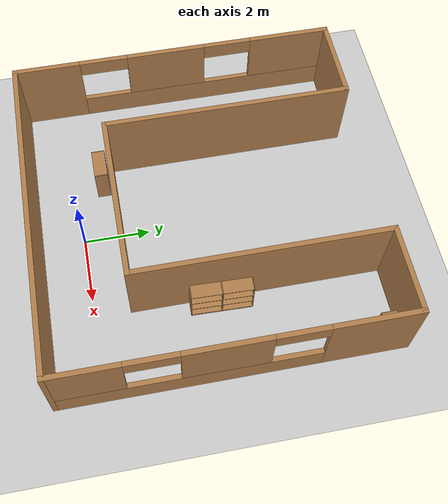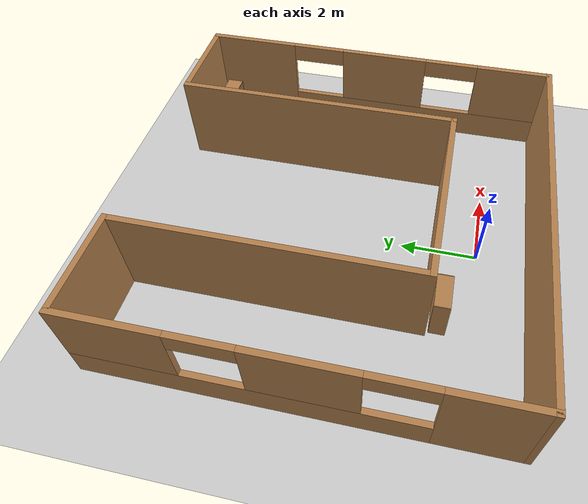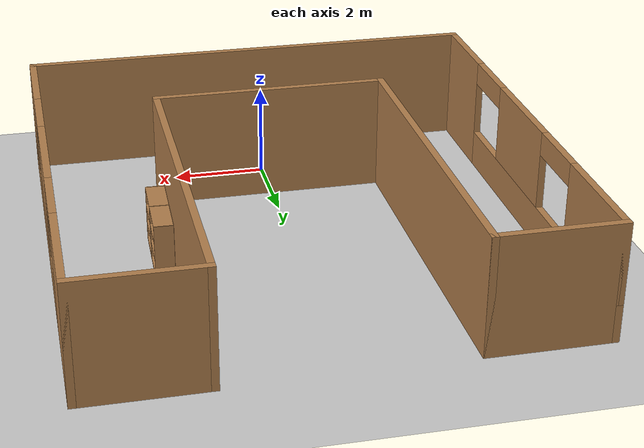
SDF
<sdf version="1.6">
 <world name="default">
  <light name="sun" type="directional">
   <pose>0 0 10 0 -0 0</pose>
   <diffuse>0.8 0.8 0.8 1</diffuse>
   <specular>0.2 0.2 0.2 1</specular>
   <attenuation>
    <range>1000</range>
    <constant>0.9</constant>
    <linear>0.01</linear>
    <quadratic>0.001</quadratic>
   </attenuation>
   <direction>-0.5 0.1 -0.9</direction>
  </light>
  <model name="ground_plane">
   <static>1</static>
   <link name="link">
    <collision name="collision">
     <geometry><plane><normal>0 0 1</normal><size>100 100</size></plane></geometry>
     <surface><friction><ode><mu>100</mu><mu2>50</mu2></ode></friction></surface>
    </collision>
    <visual name="visual">
     <cast_shadows>0</cast_shadows>
     <geometry><plane><normal>0 0 1</normal><size>100 100</size></plane></geometry>
     <material>
      <script><uri>file://media/materials/scripts/gazebo.material</uri><name>Gazebo/Grey</name></script>
     </material>
    </visual>
   </link>
  </model>
  <gravity>0 0 -9.8</gravity>
  <magnetic_field>6e-06 2.3e-05 -4.2e-05</magnetic_field>
  <atmosphere type="adiabatic"/>
  <physics name="default_physics" default="0" type="ode">
   <max_step_size>0.001</max_step_size>
   <real_time_factor>1</real_time_factor>
   <real_time_update_rate>1000</real_time_update_rate>
  </physics>
  <scene><ambient>0.4 0.4 0.4 1</ambient><background>0.7 0.7 0.7 1</background><shadows>1</shadows></scene>
  <spherical_coordinates>
   <surface_model>EARTH_WGS84</surface_model>
   <latitude_deg>0</latitude_deg>
   <longitude_deg>0</longitude_deg>
   <elevation>0</elevation>
   <heading_deg>0</heading_deg>
  </spherical_coordinates>
  <model name="uBuilding">
   <pose>0.001322 3.63993 0 0 -0 0</pose>
   <link name="Wall_0">
    <collision name="Wall_0_Collision">
     <geometry><box><size>2.65 0.15 2.5</size></box></geometry>
     <pose>0 0 1.25 0 -0 0</pose>
    </collision>
    <visual name="Wall_0_Visual">
     <pose>0 0 1.25 0 -0 0</pose>
     <geometry><box><size>2.65 0.15 2.5</size></box></geometry>
     <material>
      <script><uri>file://media/materials/scripts/gazebo.material</uri><name>Gazebo/Wood</name></script>
      <ambient>1 1 1 1</ambient>
     </material>
     <meta><layer>0</layer></meta>
    </visual>
    <pose>-3.75 5 0 0 -0 0</pose>
   </link>
   <link name="Wall_1">
    <collision name="Wall_1_Collision">
     <geometry><box><size>7.65 0.15 2.5</size></box></geometry>
     <pose>0 0 1.25 0 -0 0</pose>
    </collision>
    <visual name="Wall_1_Visual">
     <pose>0 0 1.25 0 -0 0</pose>
     <geometry><box><size>7.65 0.15 2.5</size></box></geometry>
     <material>
      <script><uri>file://media/materials/scripts/gazebo.material</uri><name>Gazebo/Wood</name></script>
      <ambient>1 1 1 1</ambient>
     </material>
     <meta><layer>0</layer></meta>
    </visual>
    <pose>-2.5 1.25 0 0 0 -1.5708</pose>
   </link>
   <link name="Wall_2">
    <collision name="Wall_2_Collision">
     <geometry><box><size>5.15 0.15 2.5</size></box></geometry>
     <pose>0 0 1.25 0 -0 0</pose>
    </collision>
    <visual name="Wall_2_Visual">
     <pose>0 0 1.25 0 -0 0</pose>
     <geometry><box><size>5.15 0.15 2.5</size></box></geometry>
     <material>
      <script><uri>file://media/materials/scripts/gazebo.material</uri><name>Gazebo/Wood</name></script>
      <ambient>1 1 1 1</ambient>
     </material>
     <meta><layer>0</layer></meta>
    </visual>
    <pose>0 -2.5 0 0 -0 0</pose>
   </link>
   <link name="Wall_3">
    <collision name="Wall_3_Collision">
     <geometry><box><size>7.65 0.15 2.5</size></box></geometry>
     <pose>0 0 1.25 0 -0 0</pose>
    </collision>
    <visual name="Wall_3_Visual">
     <pose>0 0 1.25 0 -0 0</pose>
     <geometry><box><size>7.65 0.15 2.5</size></box></geometry>
     <material>
      <script><uri>file://media/materials/scripts/gazebo.material</uri><name>Gazebo/Wood</name></script>
      <ambient>1 1 1 1</ambient>
     </material>
     <meta><layer>0</layer></meta>
    </visual>
    <pose>2.5 1.25 0 0 -0 1.5708</pose>
   </link>
   <link name="Wall_4">
    <collision name="Wall_4_Collision">
     <geometry><box><size>2.65 0.15 2.5</size></box></geometry>
     <pose>0 0 1.25 0 -0 0</pose>
    </collision>
    <visual name="Wall_4_Visual">
     <pose>0 0 1.25 0 -0 0</pose>
     <geometry><box><size>2.65 0.15 2.5</size></box></geometry>
     <material>
      <script><uri>file://media/materials/scripts/gazebo.material</uri><name>Gazebo/Wood</name></script>
      <ambient>1 1 1 1</ambient>
     </material>
     <meta><layer>0</layer></meta>
    </visual>
    <pose>3.75 5 0 0 -0 0</pose>
   </link>
   <link name="Wall_5">
    <pose>5 0 0 0 0 -1.5708</pose>
    <visual name="Wall_5_Visual_0">
     <pose>-3.79245 0 1.25 0 -0 0</pose>
     <geometry><box><size>2.5651 0.15 2.5</size></box></geometry>
     <material>
      <script><uri>file://media/materials/scripts/gazebo.material</uri><name>Gazebo/Wood</name></script>
      <ambient>1 1 1 1</ambient>
     </material>
     <meta><layer>0</layer></meta>
    </visual>
    <collision name="Wall_5_Collision_0">
     <geometry><box><size>2.5651 0.15 2.5</size></box></geometry>
     <pose>-3.79245 0 1.25 0 -0 0</pose>
    </collision>
    <visual name="Wall_5_Visual_1">
     <pose>1.28255 0 0.4 0 -0 0</pose>
     <geometry><box><size>7.5849 0.15 0.8</size></box></geometry>
     <material>
      <script><uri>file://media/materials/scripts/gazebo.material</uri><name>Gazebo/Wood</name></script>
      <ambient>1 1 1 1</ambient>
     </material>
     <meta><layer>0</layer></meta>
    </visual>
    <collision name="Wall_5_Collision_1">
     <geometry><box><size>7.5849 0.15 0.8</size></box></geometry>
     <pose>1.28255 0 0.4 0 -0 0</pose>
    </collision>
    <visual name="Wall_5_Visual_2">
     <pose>0.228463 0 1.65 0 -0 0</pose>
     <geometry><box><size>2.47673 0.15 1.7</size></box></geometry>
     <material>
      <script><uri>file://media/materials/scripts/gazebo.material</uri><name>Gazebo/Wood</name></script>
      <ambient>1 1 1 1</ambient>
     </material>
     <meta><layer>0</layer></meta>
    </visual>
    <collision name="Wall_5_Collision_2">
     <geometry><box><size>2.47673 0.15 1.7</size></box></geometry>
     <pose>0.228463 0 1.65 0 -0 0</pose>
    </collision>
    <visual name="Wall_5_Visual_3">
     <pose>4.02091 0 1.65 0 -0 0</pose>
     <geometry><box><size>2.10817 0.15 1.7</size></box></geometry>
     <material>
      <script><uri>file://media/materials/scripts/gazebo.material</uri><name>Gazebo/Wood</name></script>
      <ambient>1 1 1 1</ambient>
     </material>
     <meta><layer>0</layer></meta>
    </visual>
    <collision name="Wall_5_Collision_3">
     <geometry><box><size>2.10817 0.15 1.7</size></box></geometry>
     <pose>4.02091 0 1.65 0 -0 0</pose>
    </collision>
    <visual name="Wall_5_Visual_4">
     <pose>-1.7599 0 2.25 0 -0 0</pose>
     <geometry><box><size>1.5 0.15 0.5</size></box></geometry>
     <material>
      <script><uri>file://media/materials/scripts/gazebo.material</uri><name>Gazebo/Wood</name></script>
      <ambient>1 1 1 1</ambient>
     </material>
     <meta><layer>0</layer></meta>
    </visual>
    <collision name="Wall_5_Collision_4">
     <geometry><box><size>1.5 0.15 0.5</size></box></geometry>
     <pose>-1.7599 0 2.25 0 -0 0</pose>
    </collision>
    <visual name="Wall_5_Visual_5">
     <pose>2.21683 0 2.25 0 -0 0</pose>
     <geometry><box><size>1.5 0.15 0.5</size></box></geometry>
     <material>
      <script><uri>file://media/materials/scripts/gazebo.material</uri><name>Gazebo/Wood</name></script>
      <ambient>1 1 1 1</ambient>
     </material>
     <meta><layer>0</layer></meta>
    </visual>
    <collision name="Wall_5_Collision_5">
     <geometry><box><size>1.5 0.15 0.5</size></box></geometry>
     <pose>2.21683 0 2.25 0 -0 0</pose>
    </collision>
   </link>
   <link name="Wall_6">
    <collision name="Wall_6_Collision">
     <geometry><box><size>10.15 0.15 2.5</size></box></geometry>
     <pose>0 0 1.25 0 -0 0</pose>
    </collision>
    <visual name="Wall_6_Visual">
     <pose>0 0 1.25 0 -0 0</pose>
     <geometry><box><size>10.15 0.15 2.5</size></box></geometry>
     <material>
      <script><uri>file://media/materials/scripts/gazebo.material</uri><name>Gazebo/Wood</name></script>
      <ambient>1 1 1 1</ambient>
     </material>
     <meta><layer>0</layer></meta>
    </visual>
    <pose>0 -5 0 0 -0 3.14159</pose>
   </link>
   <link name="Wall_7">
    <pose>-5 0 0 0 -0 1.5708</pose>
    <visual name="Wall_7_Visual_0">
     <pose>-4.02091 0 1.25 0 -0 0</pose>
     <geometry><box><size>2.10817 0.15 2.5</size></box></geometry>
     <material>
      <script><uri>file://media/materials/scripts/gazebo.material</uri><name>Gazebo/Wood</name></script>
      <ambient>1 1 1 1</ambient>
     </material>
     <meta><layer>0</layer></meta>
    </visual>
    <collision name="Wall_7_Collision_0">
     <geometry><box><size>2.10817 0.15 2.5</size></box></geometry>
     <pose>-4.02091 0 1.25 0 -0 0</pose>
    </collision>
    <visual name="Wall_7_Visual_1">
     <pose>1.05409 0 0.4 0 -0 0</pose>
     <geometry><box><size>8.04183 0.15 0.8</size></box></geometry>
     <material>
      <script><uri>file://media/materials/scripts/gazebo.material</uri><name>Gazebo/Wood</name></script>
      <ambient>1 1 1 1</ambient>
     </material>
     <meta><layer>0</layer></meta>
    </visual>
    <collision name="Wall_7_Collision_1">
     <geometry><box><size>8.04183 0.15 0.8</size></box></geometry>
     <pose>1.05409 0 0.4 0 -0 0</pose>
    </collision>
    <visual name="Wall_7_Visual_2">
     <pose>-0.228463 0 1.65 0 -0 0</pose>
     <geometry><box><size>2.47673 0.15 1.7</size></box></geometry>
     <material>
      <script><uri>file://media/materials/scripts/gazebo.material</uri><name>Gazebo/Wood</name></script>
      <ambient>1 1 1 1</ambient>
     </material>
     <meta><layer>0</layer></meta>
    </visual>
    <collision name="Wall_7_Collision_2">
     <geometry><box><size>2.47673 0.15 1.7</size></box></geometry>
     <pose>-0.228463 0 1.65 0 -0 0</pose>
    </collision>
    <visual name="Wall_7_Visual_3">
     <pose>3.79245 0 1.65 0 -0 0</pose>
     <geometry><box><size>2.5651 0.15 1.7</size></box></geometry>
     <material>
      <script><uri>file://media/materials/scripts/gazebo.material</uri><name>Gazebo/Wood</name></script>
      <ambient>1 1 1 1</ambient>
     </material>
     <meta><layer>0</layer></meta>
    </visual>
    <collision name="Wall_7_Collision_3">
     <geometry><box><size>2.5651 0.15 1.7</size></box></geometry>
     <pose>3.79245 0 1.65 0 -0 0</pose>
    </collision>
    <visual name="Wall_7_Visual_4">
     <pose>-2.21683 0 2.25 0 -0 0</pose>
     <geometry><box><size>1.5 0.15 0.5</size></box></geometry>
     <material>
      <script><uri>file://media/materials/scripts/gazebo.material</uri><name>Gazebo/Wood</name></script>
      <ambient>1 1 1 1</ambient>
     </material>
     <meta><layer>0</layer></meta>
    </visual>
    <collision name="Wall_7_Collision_4">
     <geometry><box><size>1.5 0.15 0.5</size></box></geometry>
     <pose>-2.21683 0 2.25 0 -0 0</pose>
    </collision>
    <visual name="Wall_7_Visual_5">
     <pose>1.7599 0 2.25 0 -0 0</pose>
     <geometry><box><size>1.5 0.15 0.5</size></box></geometry>
     <material>
      <script><uri>file://media/materials/scripts/gazebo.material</uri><name>Gazebo/Wood</name></script>
      <ambient>1 1 1 1</ambient>
     </material>
     <meta><layer>0</layer></meta>
    </visual>
    <collision name="Wall_7_Collision_5">
     <geometry><box><size>1.5 0.15 0.5</size></box></geometry>
     <pose>1.7599 0 2.25 0 -0 0</pose>
    </collision>
   </link>
   <static>1</static>
  </model>
  <model name="bookshelf">
   <static>1</static>
   <link name="link">
    <inertial><mass>1</mass></inertial>
    <collision name="back">
     <pose>0 0.005 0.6 0 -0 0</pose>
     <geometry><box><size>0.9 0.01 1.2</size></box></geometry>
    </collision>
    <visual name="visual1">
     <pose>0 0.005 0.6 0 -0 0</pose>
     <geometry><box><size>0.9 0.01 1.2</size></box></geometry>
     <material>
      <script><uri>file://media/materials/scripts/gazebo.material</uri><name>Gazebo/Wood</name></script>
     </material>
    </visual>
    <collision name="left_side">
     <pose>0.45 -0.195 0.6 0 -0 0</pose>
     <geometry><box><size>0.02 0.4 1.2</size></box></geometry>
    </collision>
    <visual name="visual2">
     <pose>0.45 -0.195 0.6 0 -0 0</pose>
     <geometry><box><size>0.02 0.4 1.2</size></box></geometry>
     <material>
      <script><uri>file://media/materials/scripts/gazebo.material</uri><name>Gazebo/Wood</name></script>
     </material>
    </visual>
    <collision name="right_side">
     <pose>-0.45 -0.195 0.6 0 -0 0</pose>
     <geometry><box><size>0.02 0.4 1.2</size></box></geometry>
    </collision>
    <visual name="visual3">
     <pose>-0.45 -0.195 0.6 0 -0 0</pose>
     <geometry><box><size>0.02 0.4 1.2</size></box></geometry>
     <material>
      <script><uri>file://media/materials/scripts/gazebo.material</uri><name>Gazebo/Wood</name></script>
     </material>
    </visual>
    <collision name="bottom">
     <pose>0 -0.195 0.03 0 -0 0</pose>
     <geometry><box><size>0.88 0.4 0.06</size></box></geometry>
    </collision>
    <visual name="visual4">
     <pose>0 -0.195 0.03 0 -0 0</pose>
     <geometry><box><size>0.88 0.4 0.06</size></box></geometry>
     <material>
      <script><uri>file://media/materials/scripts/gazebo.material</uri><name>Gazebo/Wood</name></script>
     </material>
    </visual>
    <collision name="top">
     <pose>0 -0.195 1.19 0 -0 0</pose>
     <geometry><box><size>0.88 0.4 0.02</size></box></geometry>
    </collision>
    <visual name="visual5">
     <pose>0 -0.195 1.19 0 -0 0</pose>
     <geometry><box><size>0.88 0.4 0.02</size></box></geometry>
     <material>
      <script><uri>file://media/materials/scripts/gazebo.material</uri><name>Gazebo/Wood</name></script>
     </material>
    </visual>
    <collision name="low_shelf">
     <pose>0 -0.195 0.43 0 -0 0</pose>
     <geometry><box><size>0.88 0.4 0.02</size></box></geometry>
    </collision>
    <visual name="visual6">
     <pose>0 -0.195 0.43 0 -0 0</pose>
     <geometry><box><size>0.88 0.4 0.02</size></box></geometry>
     <material>
      <script><uri>file://media/materials/scripts/gazebo.material</uri><name>Gazebo/Wood</name></script>
     </material>
    </visual>
    <collision name="high_shelf">
     <pose>0 -0.195 0.8 0 -0 0</pose>
     <geometry><box><size>0.88 0.4 0.02</size></box></geometry>
    </collision>
    <visual name="visual7">
     <pose>0 -0.195 0.8 0 -0 0</pose>
     <geometry><box><size>0.88 0.4 0.02</size></box></geometry>
     <material>
      <script><uri>file://media/materials/scripts/gazebo.material</uri><name>Gazebo/Wood</name></script>
     </material>
    </visual>
   </link>
   <pose>-2.00991 0.993103 0 0 -0 0</pose>
  </model>
  <model name="cabinet">
   <static>1</static>
   <link name="cabinet_bottom_plate">
    <inertial>
     <pose>0 0 -1 0 -0 0</pose>
     <inertia><ixx>2.05</ixx><ixy>0</ixy><ixz>0</ixz><iyy>2.05</iyy><iyz>0</iyz><izz>2.05</izz></inertia>
     <mass>25</mass>
    </inertial>
    <collision name="cabinet_bottom_plate_geom">
     <pose>0 0 0.01 0 -0 0</pose>
     <geometry><box><size>0.45 0.45 0.02</size></box></geometry>
    </collision>
    <visual name="cabinet_bottom_plate_geom_visual">
     <pose>0 0 0.01 0 -0 0</pose>
     <geometry><box><size>0.45 0.45 0.02</size></box></geometry>
     <material>
      <script><uri>file://media/materials/scripts/gazebo.material</uri><name>Gazebo/Wood</name></script>
     </material>
    </visual>
    <collision name="cabinet_bottom_plate_geom_cabinet_back_plate">
     <pose>0.235 0 0.51 0 -0 0</pose>
     <geometry><box><size>0.02 0.45 1.02</size></box></geometry>
    </collision>
    <visual name="cabinet_bottom_plate_geom_cabinet_back_plate_visual">
     <pose>0.235 0 0.51 0 -0 0</pose>
     <geometry><box><size>0.02 0.45 1.02</size></box></geometry>
     <material>
      <script><uri>file://media/materials/scripts/gazebo.material</uri><name>Gazebo/Wood</name></script>
     </material>
    </visual>
    <collision name="cabinet_bottom_plate_geom_cabinet_left_plate">
     <pose>0 0.235 0.51 0 -0 0</pose>
     <geometry><box><size>0.45 0.02 1.02</size></box></geometry>
    </collision>
    <visual name="cabinet_bottom_plate_geom_cabinet_left_plate_visual">
     <pose>0 0.235 0.51 0 -0 0</pose>
     <geometry><box><size>0.45 0.02 1.02</size></box></geometry>
     <material>
      <script><uri>file://media/materials/scripts/gazebo.material</uri><name>Gazebo/Wood</name></script>
     </material>
    </visual>
    <collision name="cabinet_bottom_plate_geom_cabinet_middle_plate">
     <pose>0 0 0.51 0 -0 0</pose>
     <geometry><box><size>0.45 0.45 0.02</size></box></geometry>
    </collision>
    <visual name="cabinet_bottom_plate_geom_cabinet_middle_plate_visual">
     <pose>0 0 0.51 0 -0 0</pose>
     <geometry><box><size>0.45 0.45 0.02</size></box></geometry>
     <material>
      <script><uri>file://media/materials/scripts/gazebo.material</uri><name>Gazebo/Wood</name></script>
     </material>
    </visual>
    <collision name="cabinet_bottom_plate_geom_cabinet_right_plate">
     <pose>0 -0.235 0.51 0 -0 0</pose>
     <geometry><box><size>0.45 0.02 1.02</size></box></geometry>
    </collision>
    <visual name="cabinet_bottom_plate_geom_cabinet_right_plate_visual">
     <pose>0 -0.235 0.51 0 -0 0</pose>
     <geometry><box><size>0.45 0.02 1.02</size></box></geometry>
     <material>
      <script><uri>file://media/materials/scripts/gazebo.material</uri><name>Gazebo/Wood</name></script>
     </material>
    </visual>
    <collision name="cabinet_bottom_plate_geom_cabinet_top_plate">
     <pose>0 0 1.01 0 -0 0</pose>
     <geometry><box><size>0.45 0.45 0.02</size></box></geometry>
    </collision>
    <visual name="cabinet_bottom_plate_geom_cabinet_top_plate_visual">
     <pose>0 0 1.01 0 -0 0</pose>
     <geometry><box><size>0.45 0.45 0.02</size></box></geometry>
     <material>
      <script><uri>file://media/materials/scripts/gazebo.material</uri><name>Gazebo/Wood</name></script>
     </material>
    </visual>
   </link>
   <pose>4.54825 8.17957 0 0 -0 1.57413</pose>
  </model>
  <model name="bookshelf_0">
   <static>1</static>
   <link name="link">
    <inertial><mass>1</mass></inertial>
    <collision name="back">
     <pose>0 0.005 0.6 0 -0 0</pose>
     <geometry><box><size>0.9 0.01 1.2</size></box></geometry>
    </collision>
    <visual name="visual1">
     <pose>0 0.005 0.6 0 -0 0</pose>
     <geometry><box><size>0.9 0.01 1.2</size></box></geometry>
     <material>
      <script><uri>file://media/materials/scripts/gazebo.material</uri><name>Gazebo/Wood</name></script>
     </material>
    </visual>
    <collision name="left_side">
     <pose>0.45 -0.195 0.6 0 -0 0</pose>
     <geometry><box><size>0.02 0.4 1.2</size></box></geometry>
    </collision>
    <visual name="visual2">
     <pose>0.45 -0.195 0.6 0 -0 0</pose>
     <geometry><box><size>0.02 0.4 1.2</size></box></geometry>
     <material>
      <script><uri>file://media/materials/scripts/gazebo.material</uri><name>Gazebo/Wood</name></script>
     </material>
    </visual>
    <collision name="right_side">
     <pose>-0.45 -0.195 0.6 0 -0 0</pose>
     <geometry><box><size>0.02 0.4 1.2</size></box></geometry>
    </collision>
    <visual name="visual3">
     <pose>-0.45 -0.195 0.6 0 -0 0</pose>
     <geometry><box><size>0.02 0.4 1.2</size></box></geometry>
     <material>
      <script><uri>file://media/materials/scripts/gazebo.material</uri><name>Gazebo/Wood</name></script>
     </material>
    </visual>
    <collision name="bottom">
     <pose>0 -0.195 0.03 0 -0 0</pose>
     <geometry><box><size>0.88 0.4 0.06</size></box></geometry>
    </collision>
    <visual name="visual4">
     <pose>0 -0.195 0.03 0 -0 0</pose>
     <geometry><box><size>0.88 0.4 0.06</size></box></geometry>
     <material>
      <script><uri>file://media/materials/scripts/gazebo.material</uri><name>Gazebo/Wood</name></script>
     </material>
    </visual>
    <collision name="top">
     <pose>0 -0.195 1.19 0 -0 0</pose>
     <geometry><box><size>0.88 0.4 0.02</size></box></geometry>
    </collision>
    <visual name="visual5">
     <pose>0 -0.195 1.19 0 -0 0</pose>
     <geometry><box><size>0.88 0.4 0.02</size></box></geometry>
     <material>
      <script><uri>file://media/materials/scripts/gazebo.material</uri><name>Gazebo/Wood</name></script>
     </material>
    </visual>
    <collision name="low_shelf">
     <pose>0 -0.195 0.43 0 -0 0</pose>
     <geometry><box><size>0.88 0.4 0.02</size></box></geometry>
    </collision>
    <visual name="visual6">
     <pose>0 -0.195 0.43 0 -0 0</pose>
     <geometry><box><size>0.88 0.4 0.02</size></box></geometry>
     <material>
      <script><uri>file://media/materials/scripts/gazebo.material</uri><name>Gazebo/Wood</name></script>
     </material>
    </visual>
    <collision name="high_shelf">
     <pose>0 -0.195 0.8 0 -0 0</pose>
     <geometry><box><size>0.88 0.4 0.02</size></box></geometry>
    </collision>
    <visual name="visual7">
     <pose>0 -0.195 0.8 0 -0 0</pose>
     <geometry><box><size>0.88 0.4 0.02</size></box></geometry>
     <material>
      <script><uri>file://media/materials/scripts/gazebo.material</uri><name>Gazebo/Wood</name></script>
     </material>
    </visual>
   </link>
   <pose>2.61174 3.2573 0 0 -0 1.54124</pose>
  </model>
  <model name="bookshelf_0_clone">
   <static>1</static>
   <link name="link">
    <inertial><mass>1</mass></inertial>
    <collision name="back">
     <pose>0 0.005 0.6 0 -0 0</pose>
     <geometry><box><size>0.9 0.01 1.2</size></box></geometry>
    </collision>
    <visual name="visual1">
     <pose>0 0.005 0.6 0 -0 0</pose>
     <geometry><box><size>0.9 0.01 1.2</size></box></geometry>
     <material>
      <script><uri>file://media/materials/scripts/gazebo.material</uri><name>Gazebo/Wood</name></script>
     </material>
    </visual>
    <collision name="left_side">
     <pose>0.45 -0.195 0.6 0 -0 0</pose>
     <geometry><box><size>0.02 0.4 1.2</size></box></geometry>
    </collision>
    <visual name="visual2">
     <pose>0.45 -0.195 0.6 0 -0 0</pose>
     <geometry><box><size>0.02 0.4 1.2</size></box></geometry>
     <material>
      <script><uri>file://media/materials/scripts/gazebo.material</uri><name>Gazebo/Wood</name></script>
     </material>
    </visual>
    <collision name="right_side">
     <pose>-0.45 -0.195 0.6 0 -0 0</pose>
     <geometry><box><size>0.02 0.4 1.2</size></box></geometry>
    </collision>
    <visual name="visual3">
     <pose>-0.45 -0.195 0.6 0 -0 0</pose>
     <geometry><box><size>0.02 0.4 1.2</size></box></geometry>
     <material>
      <script><uri>file://media/materials/scripts/gazebo.material</uri><name>Gazebo/Wood</name></script>
     </material>
    </visual>
    <collision name="bottom">
     <pose>0 -0.195 0.03 0 -0 0</pose>
     <geometry><box><size>0.88 0.4 0.06</size></box></geometry>
    </collision>
    <visual name="visual4">
     <pose>0 -0.195 0.03 0 -0 0</pose>
     <geometry><box><size>0.88 0.4 0.06</size></box></geometry>
     <material>
      <script><uri>file://media/materials/scripts/gazebo.material</uri><name>Gazebo/Wood</name></script>
     </material>
    </visual>
    <collision name="top">
     <pose>0 -0.195 1.19 0 -0 0</pose>
     <geometry><box><size>0.88 0.4 0.02</size></box></geometry>
    </collision>
    <visual name="visual5">
     <pose>0 -0.195 1.19 0 -0 0</pose>
     <geometry><box><size>0.88 0.4 0.02</size></box></geometry>
     <material>
      <script><uri>file://media/materials/scripts/gazebo.material</uri><name>Gazebo/Wood</name></script>
     </material>
    </visual>
    <collision name="low_shelf">
     <pose>0 -0.195 0.43 0 -0 0</pose>
     <geometry><box><size>0.88 0.4 0.02</size></box></geometry>
    </collision>
    <visual name="visual6">
     <pose>0 -0.195 0.43 0 -0 0</pose>
     <geometry><box><size>0.88 0.4 0.02</size></box></geometry>
     <material>
      <script><uri>file://media/materials/scripts/gazebo.material</uri><name>Gazebo/Wood</name></script>
     </material>
    </visual>
    <collision name="high_shelf">
     <pose>0 -0.195 0.8 0 -0 0</pose>
     <geometry><box><size>0.88 0.4 0.02</size></box></geometry>
    </collision>
    <visual name="visual7">
     <pose>0 -0.195 0.8 0 -0 0</pose>
     <geometry><box><size>0.88 0.4 0.02</size></box></geometry>
     <material>
      <script><uri>file://media/materials/scripts/gazebo.material</uri><name>Gazebo/Wood</name></script>
     </material>
    </visual>
   </link>
   <pose>2.63699 4.16363 0 0 -0 1.54124</pose>
  </model>
 </world>
</sdf>
